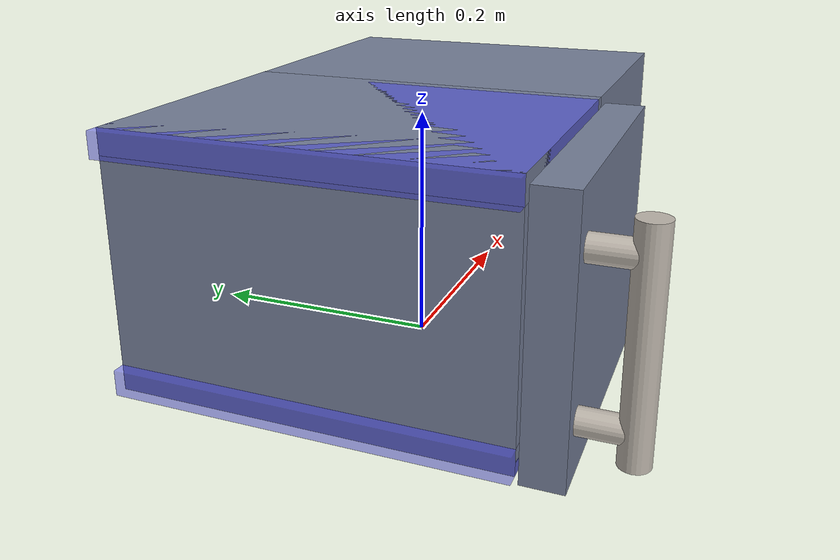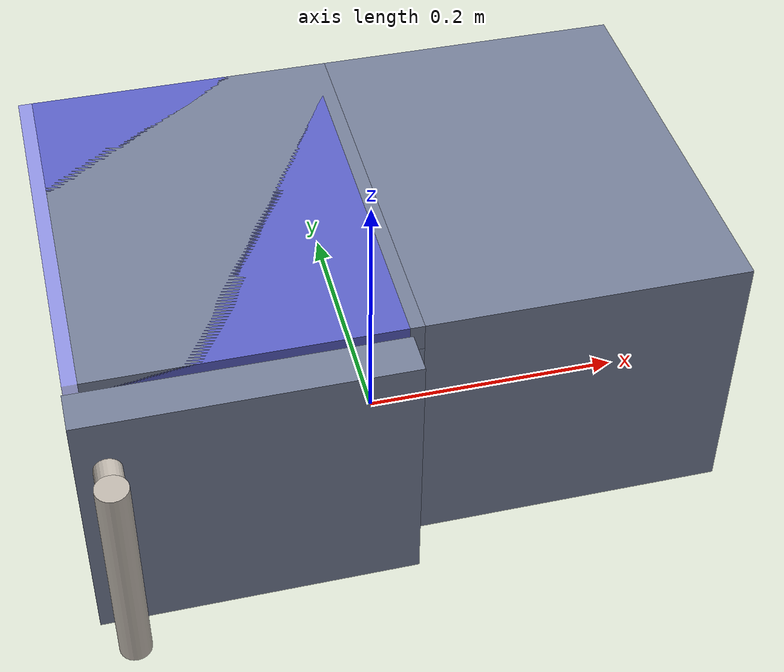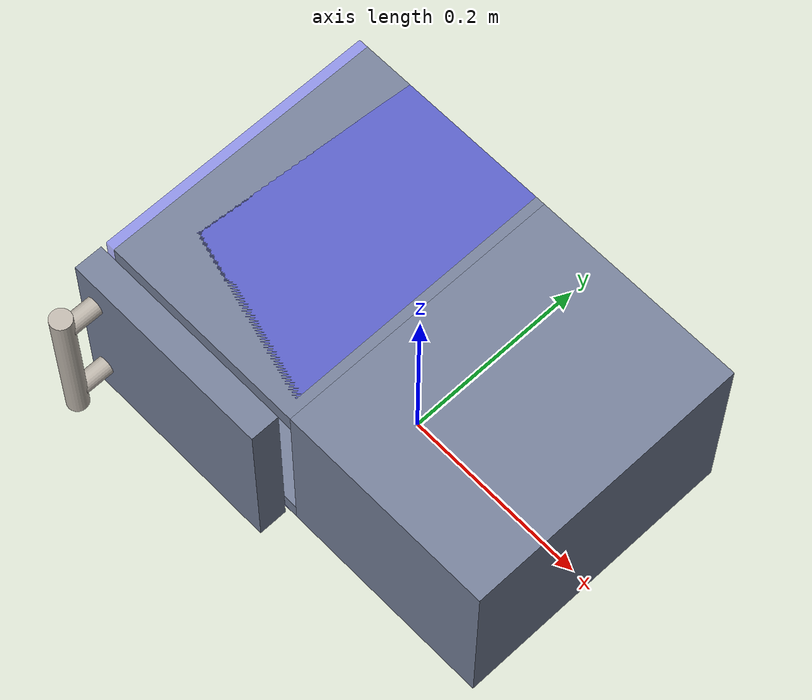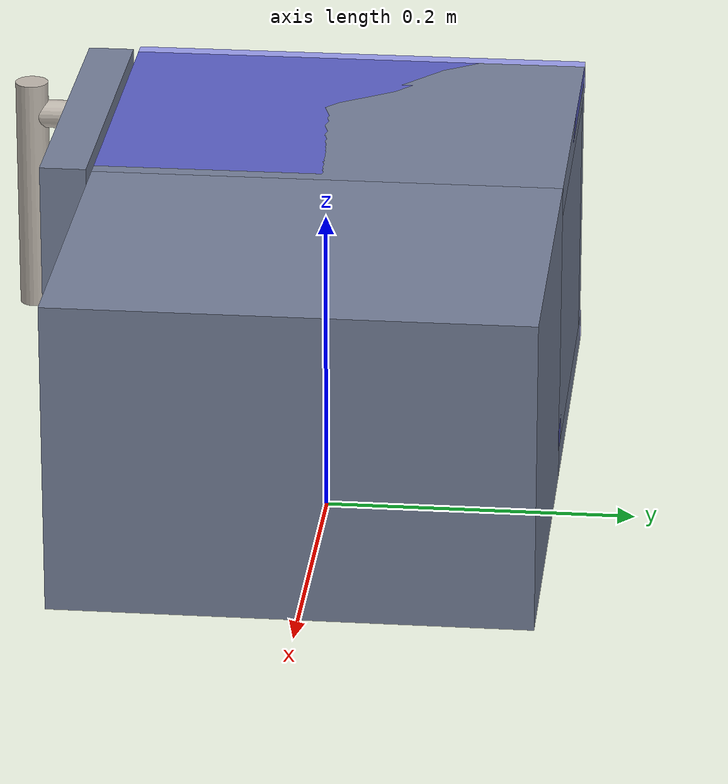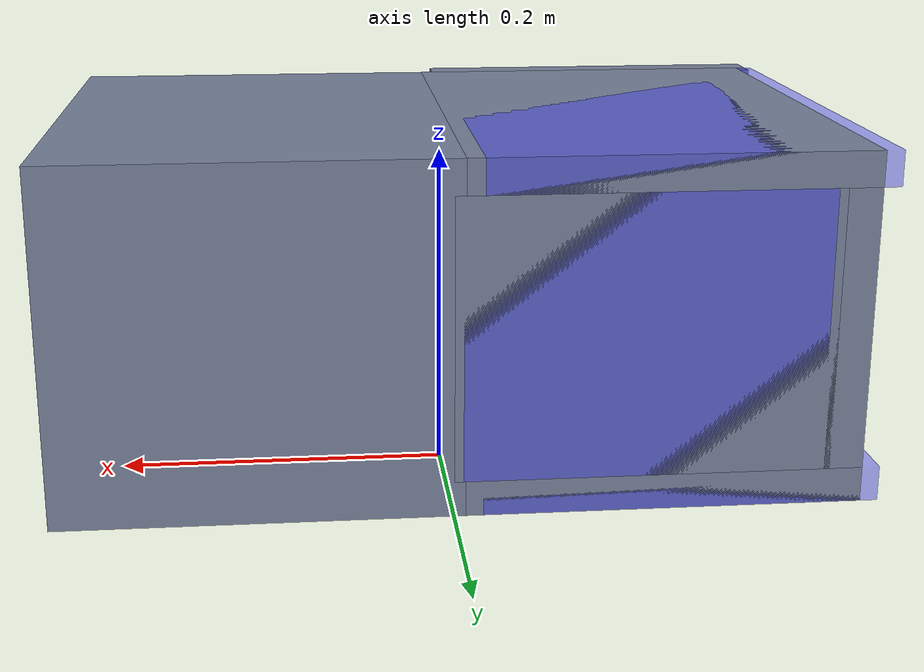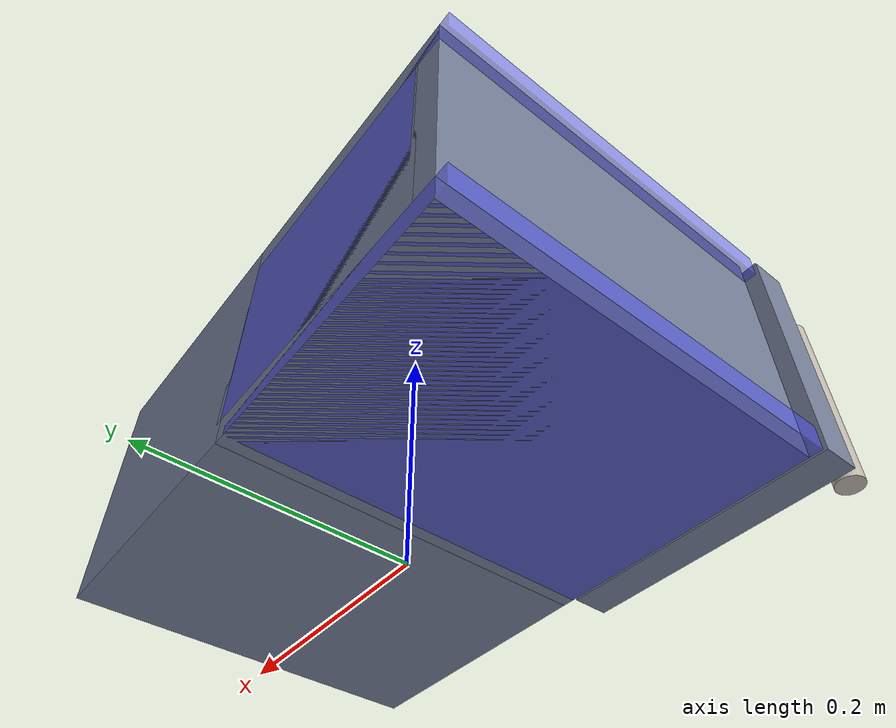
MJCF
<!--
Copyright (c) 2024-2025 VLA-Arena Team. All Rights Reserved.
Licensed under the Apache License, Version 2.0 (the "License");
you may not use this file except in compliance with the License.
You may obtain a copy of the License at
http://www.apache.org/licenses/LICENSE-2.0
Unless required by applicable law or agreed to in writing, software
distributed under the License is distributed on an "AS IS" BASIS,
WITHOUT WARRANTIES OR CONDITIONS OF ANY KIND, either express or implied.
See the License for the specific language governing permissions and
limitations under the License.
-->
<mujoco model="slide_cabinet">
    <compiler inertiafromgeom="auto" inertiagrouprange="4 4" angle="radian"/>

    <asset>
        <texture name="T_slide_metal" type="cube" height="1" width="1" file="textures/metal1.png"/>

        <material name="M_slide_metal" texture="T_slide_metal" texrepeat="3 3" reflectance="0.7" shininess=".4" texuniform="false"/>
        <material name="M_slide_blue" rgba=".46 .5 .6 1" reflectance="0.7" shininess=".4"/>
        <material name="slide_collision_blue" rgba="0.3 0.3 1.0 0.5" shininess="0" specular="0"/>
    </asset>

    <default>
        <default class="slidecabinet">
            <joint damping="2" frictionloss="2" armature=".01" limited="true"/>
            <geom conaffinity="0" contype="0" group="1" material="M_slide_blue" type="mesh"/>
        </default>

        <default class="slide_collision">
            <geom conaffinity="1" condim="3" contype="0" group="0" margin="0.001" material="slide_collision_blue"/>
        </default>
    </default>

    <worldbody>
    <body>
        <body name="object" pos="0 0 .125">
            <geom class="slidecabinet" pos="-0.1125 0 -0.09" size="0.1115 0.15 0.01" type="box"/>
            <geom class="slidecabinet" pos="0.112 0 0" size="0.113 0.15 0.1" type="box"/>
            <geom class="slidecabinet" pos="-0.1125 0 0.09" size="0.1115 0.15 0.01" type="box"/>
            <geom class="slidecabinet" pos="-0.213 0 0" size="0.011 0.15 0.08" type="box"/>
            <geom class="slidecabinet" pos="-0.1 0.138 0.0" size="0.105 0.012 0.08" type="box"/>

            <geom class="slide_collision" pos="-0.1225 0 -0.09" size="0.1115 0.15 0.01" type="box" mass=".2"/>
            <geom class="slide_collision" pos="0.112 0 0" size="0.113 0.15 0.1" type="box" mass="1"/>
            <geom class="slide_collision" pos="-0.1225 0 0.09" size="0.1115 0.15 0.01" type="box" mass=".2"/>
            <geom class="slide_collision" pos="-0.213 0 0" size="0.011 0.15 0.08" type="box" mass=".2"/>
            <geom class="slide_collision" pos="-0.1 0.138 0.0" size="0.1 0.012 0.08" type="box" mass=".2"/>
            <body name="slidelink" pos="-0.1225 -0.16 0">
                <joint name="slidedoor_joint" axis="1 0 0" type="slide" range="0 .44" limited="true"/>
                <geom class="slidecabinet" material="M_slide_metal" euler="1.57 0 0" pos="-0.0915 -0.03 -0.057" size="0.0095 0.0265 0.0095" type="cylinder"/>
                <geom class="slidecabinet" material="M_slide_metal" euler="1.57 0 0" pos="-0.0915 -0.03 0.057" size="0.0095 0.0265 0.0095" type="cylinder"/>
                <geom class="slidecabinet" material="M_slide_metal" pos="-0.0915 -0.0615 0" size="0.011 0.0795" type="cylinder"/>
                <geom class="slidecabinet" pos="0 -.01 0" size="0.1125 0.015 0.0975" type="box"/>

                <geom class="slide_collision" pos="0 -.01 0" size="0.1125 0.015 0.0975" type="box" mass=".2"/>
                <geom class="slide_collision" euler="1.57 0 0" pos="-0.0915 -0.03 -0.057" size="0.0095 0.0265 0.0095" type="cylinder" mass=".02"/>
                <geom class="slide_collision" euler="1.57 0 0" pos="-0.0915 -0.03 -0.057" size="0.0095 0.0265 0.0095" type="cylinder" mass=".02"/>
                <geom class="slide_collision" pos="-0.0915 -0.0615 0" size="0.011 0.0795" type="cylinder" mass=".1"/>
                <site type="sphere" name="slide_site" pos="-0.0915 -0.0615 0" size=".005" group="3"/>
            </body>
        </body>
      <site rgba="0 0 0 0" size="0.0025" pos="0 0 -0.03" name="bottom_site" />
      <site rgba="0 0 0 0" size="0.0025" pos="0 0 0.03" name="top_site" />
      <site rgba="0 0 0 0" size="0.0025" pos="0.0075 0.0075 0" name="horizontal_radius_site" />
    </body>
    </worldbody>

</mujoco>
